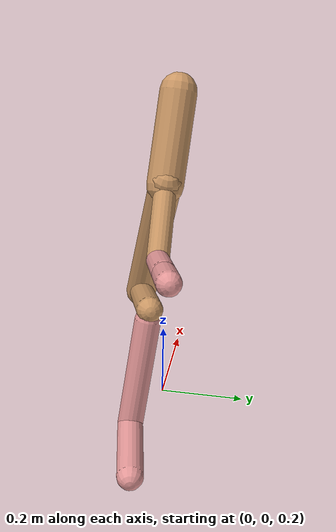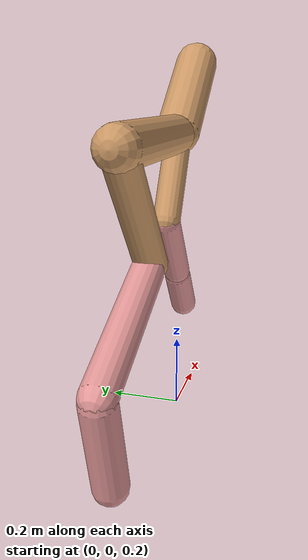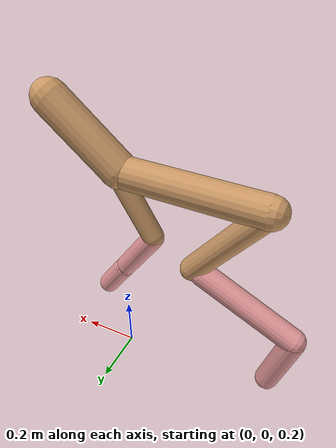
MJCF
<mujoco model="cheetah">
  <compiler angle="radian" coordinate="local" inertiafromgeom="true" settotalmass="14" />
  <default>
    <joint armature=".1" damping=".01" limited="true" solimplimit="0 .8 .03" solreflimit=".02 1" stiffness="8" />
    <geom conaffinity="0" condim="3" contype="1" friction="0.8 .1 .1" rgba="0.8 0.6 .4 1" solimp="0.0 0.8 0.01" solref="0.02 1" />
    <motor ctrllimited="true" ctrlrange="-1 1" />
  </default>
  <size nstack="300000" nuser_geom="1" />
  <option gravity="0 0 -9.81" timestep="0.01" />
  <worldbody>
    <body name="torso" pos="0.0 0.0 1.0071324642774149">
      <joint armature="0" axis="1 0 0" damping="0" limited="false" name="ignorex" pos="0 0 0" stiffness="0" type="slide" />
      <joint armature="0" axis="0 0 1" damping="0" limited="false" name="ignorez" pos="0 0 0" stiffness="0" type="slide" />
      <joint armature="0" axis="0 1 0" damping="0" limited="false" name="ignorey" pos="0 0 0" stiffness="0" type="hinge" />
      <geom fromto="-0.5 0.0 0.0 0.00795082116837087 0.0 0.0" name="torso" size="0.05383349961496971" type="capsule" />
      <geom axisangle="0 1 0 .87" name="head" pos="0.10795082116837085 0.0 0.1" size="0.06064840598420238 0.15" type="capsule" />

      <body name="bthigh" pos="-.5 0 0">
        <joint axis="0 1 0" damping="6" name="bthigh" pos="0 0 0" range="-.52 1.05" stiffness="240" type="hinge" />
        <geom axisangle="0 1 0 -3.8" name="bthigh" pos="0.1230110046008919 0.0 -0.15991430598115947" size="0.04263387546563196 0.18274085366120776" type="capsule" />
        <body name="bshin" pos="0.2060220092017838 0.0 -0.3098286119623189">
          <joint axis="0 1 0" damping="4.5" name="bshin" pos="0 0 0" range="-.785 .785" stiffness="180" type="hinge" />
          <geom axisangle="0 1 0 -2.03" name="bshin" pos="-0.17492046109599962 0.0 -0.08746023054799981" rgba="0.9 0.6 0.6 1" size="0.04263387546563196 0.18904226240814598" type="capsule" />
          <body name="bfoot" pos="-0.34984092219199925 0.0 -0.17492046109599962">
            <joint axis="0 1 0" damping="3" name="bfoot" pos="0 0 0" range="-.4 .785" stiffness="120" type="hinge" />
            <geom axisangle="0 1 0 -.27" name="bfoot" pos="0.037229105379084276 0.0 -0.1203741073923725" rgba="0.9 0.6 0.6 1" size="0.04263387546563196 0.11846648444243815" type="capsule" />
            <inertial mass="10" />
          </body>
        </body>
      </body>
      <body name="fthigh" pos="0.00795082116837087 0.0 0.0">
        <joint axis="0 1 0" damping="4.5" name="fthigh" pos="0 0 0" range="-1.5 0.8" stiffness="180" type="hinge" />
        <geom axisangle="0 1 0 .52" name="fthigh" pos="-0.06592826168014684 0.0 -0.11301987716596601" size="0.036706267655961196 0.12491908620739195" type="capsule" />
        <body name="fshin" pos="-0.1318565233602937 0.0 -0.22603975433193202">
          <joint axis="0 1 0" damping="3" name="fshin" pos="0 0 0" range="-1.2 1.1" stiffness="120" type="hinge" />
          <geom axisangle="0 1 0 -.6" name="fshin" pos="0.0612291905161483 0.0 -0.08477887917620533" rgba="0.9 0.6 0.6 1" size="0.036706267655961196 0.09955957246604169" type="capsule" />
          <body name="ffoot" pos="0.1224583810322966 0.0 -0.16955775835241066">
            <joint axis="0 1 0" damping="1.5" name="ffoot" pos="0 0 0" range="-3.1 -0.3" stiffness="60" type="hinge" />
            <geom axisangle="0 1 0 -.6" name="ffoot" pos="0.042700097116788016 0.0 -0.06642237329278138" rgba="0.9 0.6 0.6 1" size="0.036706267655961196 0.0657468874775747" type="capsule" />
            <inertial mass="10" />
          </body>
        </body>
      </body>
    </body>
  </worldbody>
  <actuator>
    <motor gear="120" joint="bthigh" name="bthigh" />
    <motor gear="90" joint="bshin" name="bshin" />
    <motor gear="60" joint="bfoot" name="bfoot" />
    <motor gear="120" joint="fthigh" name="fthigh" />
    <motor gear="60" joint="fshin" name="fshin" />
    <motor gear="30" joint="ffoot" name="ffoot" />
  </actuator>
</mujoco>
